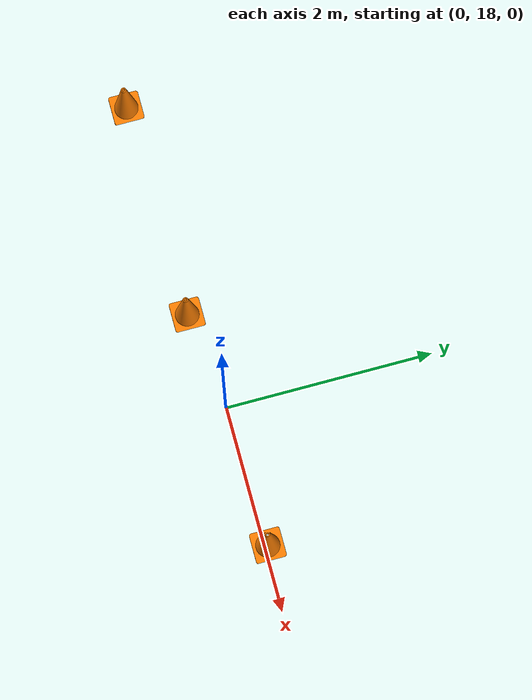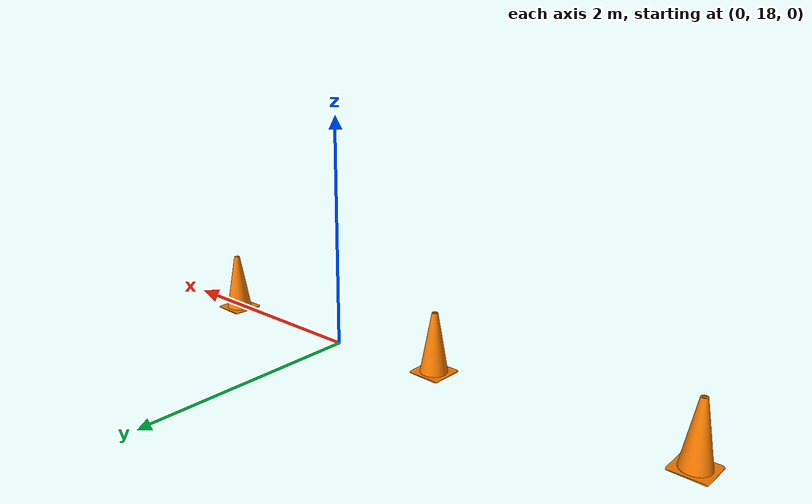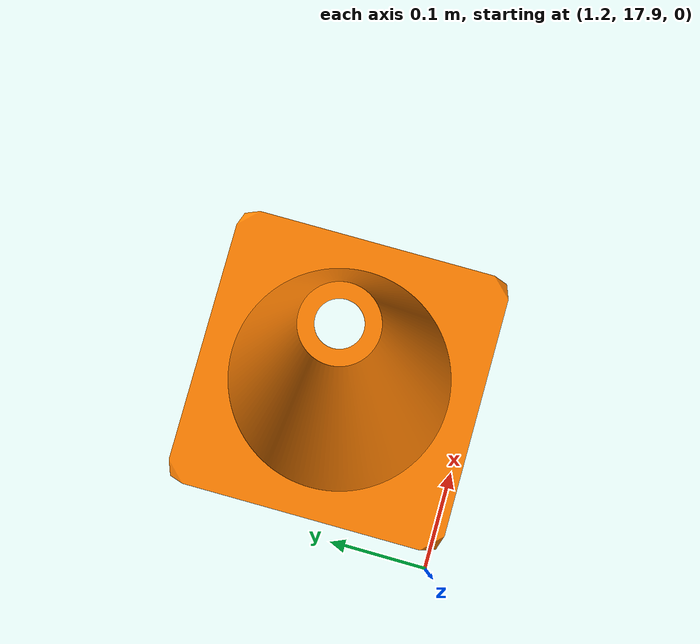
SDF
<sdf version="1.7">
 <world name="IARRC Urban">
  <model name="TallerCone_clone_75">
   <link name="link_0">
    <inertial>
     <mass>0.068</mass>
     <inertia>
      <ixx>0.000367263</ixx>
      <ixy>0</ixy>
      <ixz>0</ixz>
      <iyy>0.000367263</iyy>
      <iyz>0</iyz>
      <izz>0.000165927</izz>
     </inertia>
    </inertial>
    <visual name="visual">
     <geometry><mesh><uri>model://TallerCone/traffic_cone.stl</uri><scale>0.01 0.01 0.01</scale></mesh></geometry>
     <material>
      <lighting>1</lighting>
      <script><uri>file://media/materials/scripts/gazebo.material</uri><name>Gazebo/Grey</name></script>
      <ambient>0.4 0.2 0 1</ambient>
      <diffuse>1 0.5 0 1</diffuse>
      <specular>0.01 0.01 0.01 1</specular>
      <emissive>0 0 0 1</emissive>
     </material>
    </visual>
    <collision name="collision">
     <geometry><mesh><uri>model://TallerCone/traffic_cone.stl</uri></mesh></geometry>
     <surface>
      <friction>
       <ode><mu>1</mu><mu2>1</mu2><fdir1>0 0 0</fdir1><slip1>0</slip1><slip2>0</slip2></ode>
       <torsional>
        <coefficient>1</coefficient>
        <patch_radius>0</patch_radius>
        <surface_radius>0</surface_radius>
        <use_patch_radius>1</use_patch_radius>
        <ode><slip>0</slip></ode>
       </torsional>
      </friction>
      <bounce><restitution_coefficient>0</restitution_coefficient><threshold>1e+06</threshold></bounce>
      <contact>
       <collide_without_contact>0</collide_without_contact>
       <collide_without_contact_bitmask>1</collide_without_contact_bitmask>
       <collide_bitmask>1</collide_bitmask>
       <ode>
        <soft_cfm>0</soft_cfm>
        <soft_erp>0.2</soft_erp>
        <kp>1e+13</kp>
        <kd>1</kd>
        <max_vel>0.01</max_vel>
        <min_depth>0</min_depth>
       </ode>
       <bullet>
        <split_impulse>1</split_impulse>
        <split_impulse_penetration_threshold>-0.01</split_impulse_penetration_threshold>
        <soft_cfm>0</soft_cfm>
        <soft_erp>0.2</soft_erp>
        <kp>1e+13</kp>
        <kd>1</kd>
       </bullet>
      </contact>
     </surface>
    </collision>
   </link>
   <static>1</static>
   <pose>1.36188 18.0352 -0.034283 0 -0 0</pose>
  </model>
  <model name="TallerCone_clone_76">
   <link name="link_0">
    <inertial>
     <mass>0.068</mass>
     <inertia>
      <ixx>0.000367263</ixx>
      <ixy>0</ixy>
      <ixz>0</ixz>
      <iyy>0.000367263</iyy>
      <iyz>0</iyz>
      <izz>0.000165927</izz>
     </inertia>
    </inertial>
    <visual name="visual">
     <geometry><mesh><uri>model://TallerCone/traffic_cone.stl</uri><scale>0.01 0.01 0.01</scale></mesh></geometry>
     <material>
      <lighting>1</lighting>
      <script><uri>file://media/materials/scripts/gazebo.material</uri><name>Gazebo/Grey</name></script>
      <ambient>0.4 0.2 0 1</ambient>
      <diffuse>1 0.5 0 1</diffuse>
      <specular>0.01 0.01 0.01 1</specular>
      <emissive>0 0 0 1</emissive>
     </material>
    </visual>
    <collision name="collision">
     <geometry><mesh><uri>model://TallerCone/traffic_cone.stl</uri></mesh></geometry>
     <surface>
      <friction>
       <ode><mu>1</mu><mu2>1</mu2><fdir1>0 0 0</fdir1><slip1>0</slip1><slip2>0</slip2></ode>
       <torsional>
        <coefficient>1</coefficient>
        <patch_radius>0</patch_radius>
        <surface_radius>0</surface_radius>
        <use_patch_radius>1</use_patch_radius>
        <ode><slip>0</slip></ode>
       </torsional>
      </friction>
      <bounce><restitution_coefficient>0</restitution_coefficient><threshold>1e+06</threshold></bounce>
      <contact>
       <collide_without_contact>0</collide_without_contact>
       <collide_without_contact_bitmask>1</collide_without_contact_bitmask>
       <collide_bitmask>1</collide_bitmask>
       <ode>
        <soft_cfm>0</soft_cfm>
        <soft_erp>0.2</soft_erp>
        <kp>1e+13</kp>
        <kd>1</kd>
        <max_vel>0.01</max_vel>
        <min_depth>0</min_depth>
       </ode>
       <bullet>
        <split_impulse>1</split_impulse>
        <split_impulse_penetration_threshold>-0.01</split_impulse_penetration_threshold>
        <soft_cfm>0</soft_cfm>
        <soft_erp>0.2</soft_erp>
        <kp>1e+13</kp>
        <kd>1</kd>
       </bullet>
      </contact>
     </surface>
    </collision>
   </link>
   <static>1</static>
   <pose>-0.969134 17.8823 -0.034283 0 -0 0</pose>
  </model>
  <model name="TallerCone_clone_77">
   <link name="link_0">
    <inertial>
     <mass>0.068</mass>
     <inertia>
      <ixx>0.000367263</ixx>
      <ixy>0</ixy>
      <ixz>0</ixz>
      <iyy>0.000367263</iyy>
      <iyz>0</iyz>
      <izz>0.000165927</izz>
     </inertia>
    </inertial>
    <visual name="visual">
     <geometry><mesh><uri>model://TallerCone/traffic_cone.stl</uri><scale>0.01 0.01 0.01</scale></mesh></geometry>
     <material>
      <lighting>1</lighting>
      <script><uri>file://media/materials/scripts/gazebo.material</uri><name>Gazebo/Grey</name></script>
      <ambient>0.4 0.2 0 1</ambient>
      <diffuse>1 0.5 0 1</diffuse>
      <specular>0.01 0.01 0.01 1</specular>
      <emissive>0 0 0 1</emissive>
     </material>
    </visual>
    <collision name="collision">
     <geometry><mesh><uri>model://TallerCone/traffic_cone.stl</uri></mesh></geometry>
     <surface>
      <friction>
       <ode><mu>1</mu><mu2>1</mu2><fdir1>0 0 0</fdir1><slip1>0</slip1><slip2>0</slip2></ode>
       <torsional>
        <coefficient>1</coefficient>
        <patch_radius>0</patch_radius>
        <surface_radius>0</surface_radius>
        <use_patch_radius>1</use_patch_radius>
        <ode><slip>0</slip></ode>
       </torsional>
      </friction>
      <bounce><restitution_coefficient>0</restitution_coefficient><threshold>1e+06</threshold></bounce>
      <contact>
       <collide_without_contact>0</collide_without_contact>
       <collide_without_contact_bitmask>1</collide_without_contact_bitmask>
       <collide_bitmask>1</collide_bitmask>
       <ode>
        <soft_cfm>0</soft_cfm>
        <soft_erp>0.2</soft_erp>
        <kp>1e+13</kp>
        <kd>1</kd>
        <max_vel>0.01</max_vel>
        <min_depth>0</min_depth>
       </ode>
       <bullet>
        <split_impulse>1</split_impulse>
        <split_impulse_penetration_threshold>-0.01</split_impulse_penetration_threshold>
        <soft_cfm>0</soft_cfm>
        <soft_erp>0.2</soft_erp>
        <kp>1e+13</kp>
        <kd>1</kd>
       </bullet>
      </contact>
     </surface>
    </collision>
   </link>
   <static>1</static>
   <pose>-3.10456 17.845 -0.034283 0 -0 0</pose>
  </model>
 </world>
</sdf>
